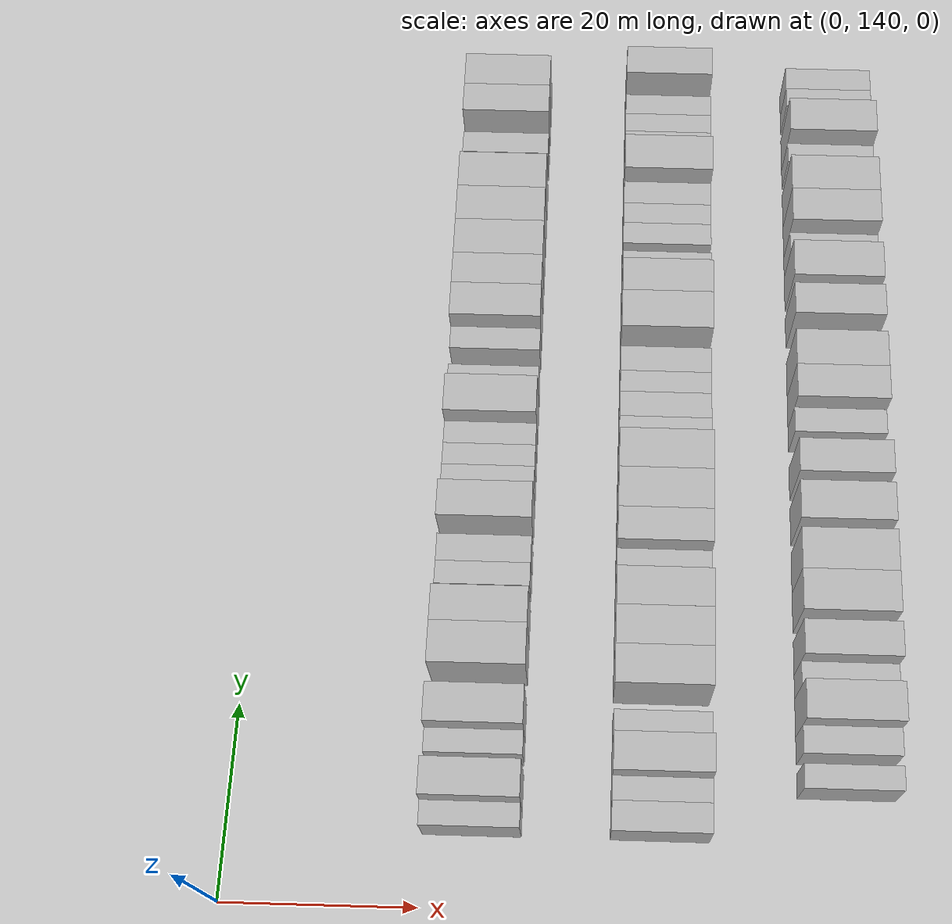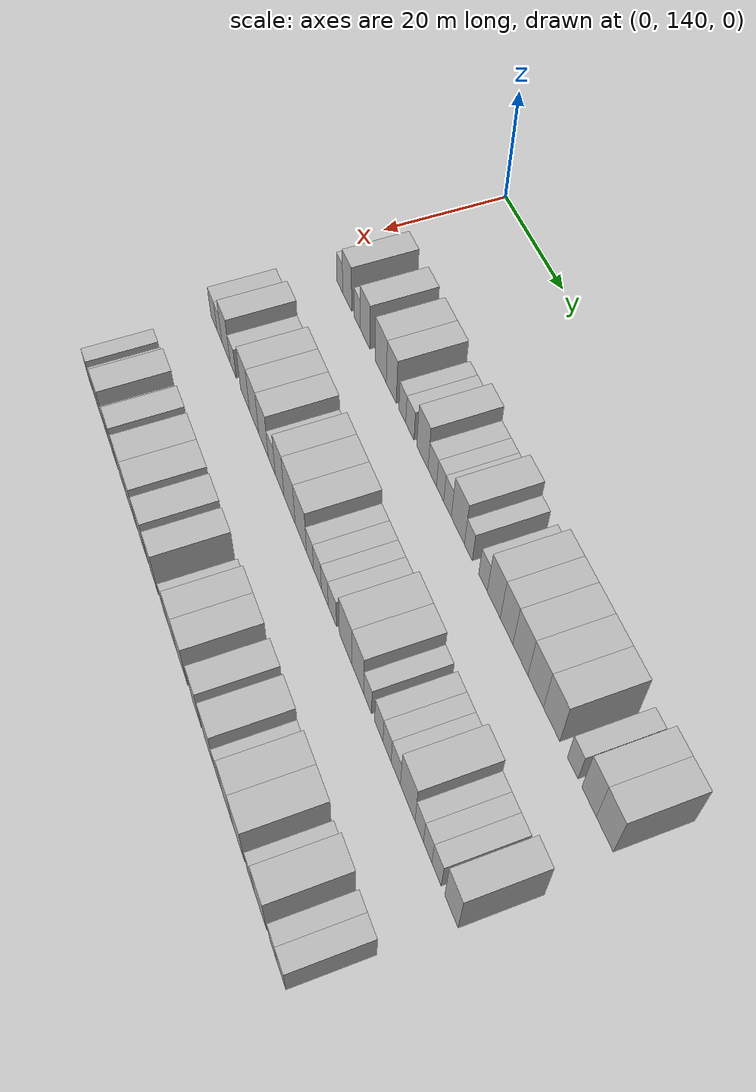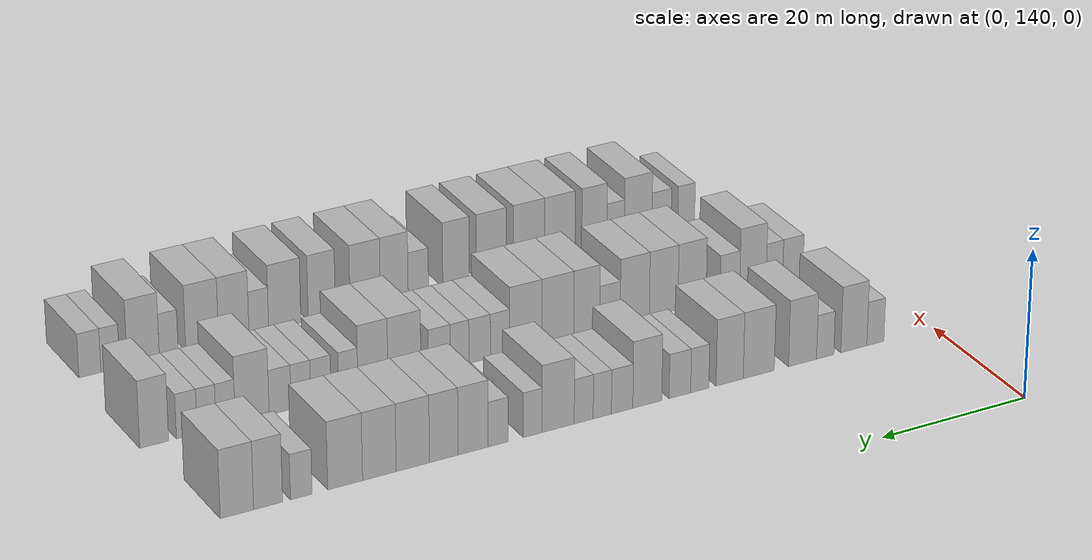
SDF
<sdf version="1.6">
 <world name="default">
  <model name="building_96">
   <static>1</static>
   <pose>25.0000 148.4211 0 0.000000 0.000000 0.000000</pose>
   <link name="link">
    <pose>0 0 3.00 0 0 0</pose>
    <collision name="collision"><geometry><box><size>10.0000 2.4533 6.0000</size></box></geometry></collision>
    <visual name="visual">
     <cast_shadows>0</cast_shadows>
     <geometry><box><size>10.0000 2.4533 6.0000</size></box></geometry>
     <material>
      <script>
       <uri>model://HANNAS_wall/materials/scripts</uri>
       <uri>model://HANNAS_wall/materials/textures</uri>
       <name>vrc/HANNAS_wall</name>
      </script>
     </material>
    </visual>
   </link>
  </model>
  <model name="building_97">
   <static>1</static>
   <pose>25.0000 151.5107 0 0.000000 0.000000 0.000000</pose>
   <link name="link">
    <pose>0 0 4.50 0 0 0</pose>
    <collision name="collision"><geometry><box><size>10.0000 3.7259 9.0000</size></box></geometry></collision>
    <visual name="visual">
     <cast_shadows>0</cast_shadows>
     <geometry><box><size>10.0000 3.7259 9.0000</size></box></geometry>
     <material>
      <script>
       <uri>model://HANNAS_wall/materials/scripts</uri>
       <uri>model://HANNAS_wall/materials/textures</uri>
       <name>vrc/HANNAS_wall</name>
      </script>
     </material>
    </visual>
   </link>
  </model>
  <model name="building_98">
   <static>1</static>
   <pose>25.0000 155.6015 0 0.000000 0.000000 0.000000</pose>
   <link name="link">
    <pose>0 0 3.00 0 0 0</pose>
    <collision name="collision"><geometry><box><size>10.0000 2.4557 6.0000</size></box></geometry></collision>
    <visual name="visual">
     <cast_shadows>0</cast_shadows>
     <geometry><box><size>10.0000 2.4557 6.0000</size></box></geometry>
     <material>
      <script>
       <uri>model://HANNAS_wall/materials/scripts</uri>
       <uri>model://HANNAS_wall/materials/textures</uri>
       <name>vrc/HANNAS_wall</name>
      </script>
     </material>
    </visual>
   </link>
  </model>
  <model name="building_99">
   <static>1</static>
   <pose>25.0000 158.8070 0 0.000000 0.000000 0.000000</pose>
   <link name="link">
    <pose>0 0 4.50 0 0 0</pose>
    <collision name="collision"><geometry><box><size>10.0000 3.9552 9.0000</size></box></geometry></collision>
    <visual name="visual">
     <cast_shadows>0</cast_shadows>
     <geometry><box><size>10.0000 3.9552 9.0000</size></box></geometry>
     <material>
      <script>
       <uri>model://HANNAS_wall/materials/scripts</uri>
       <uri>model://HANNAS_wall/materials/textures</uri>
       <name>vrc/HANNAS_wall</name>
      </script>
     </material>
    </visual>
   </link>
  </model>
  <model name="building_100">
   <static>1</static>
   <pose>25.0000 164.9607 0 0.000000 0.000000 0.000000</pose>
   <link name="link">
    <pose>0 0 4.50 0 0 0</pose>
    <collision name="collision"><geometry><box><size>10.0000 4.3523 9.0000</size></box></geometry></collision>
    <visual name="visual">
     <cast_shadows>0</cast_shadows>
     <geometry><box><size>10.0000 4.3523 9.0000</size></box></geometry>
     <material>
      <script>
       <uri>model://HANNAS_wall/materials/scripts</uri>
       <uri>model://HANNAS_wall/materials/textures</uri>
       <name>vrc/HANNAS_wall</name>
      </script>
     </material>
    </visual>
   </link>
  </model>
  <model name="building_101">
   <static>1</static>
   <pose>25.0000 169.0292 0 0.000000 0.000000 0.000000</pose>
   <link name="link">
    <pose>0 0 4.50 0 0 0</pose>
    <collision name="collision"><geometry><box><size>10.0000 3.7846 9.0000</size></box></geometry></collision>
    <visual name="visual">
     <cast_shadows>0</cast_shadows>
     <geometry><box><size>10.0000 3.7846 9.0000</size></box></geometry>
     <material>
      <script>
       <uri>model://HANNAS_wall/materials/scripts</uri>
       <uri>model://HANNAS_wall/materials/textures</uri>
       <name>vrc/HANNAS_wall</name>
      </script>
     </material>
    </visual>
   </link>
  </model>
  <model name="building_102">
   <static>1</static>
   <pose>25.0000 173.1802 0 0.000000 0.000000 0.000000</pose>
   <link name="link">
    <pose>0 0 3.00 0 0 0</pose>
    <collision name="collision"><geometry><box><size>10.0000 2.5174 6.0000</size></box></geometry></collision>
    <visual name="visual">
     <cast_shadows>0</cast_shadows>
     <geometry><box><size>10.0000 2.5174 6.0000</size></box></geometry>
     <material>
      <script>
       <uri>model://HANNAS_wall/materials/scripts</uri>
       <uri>model://HANNAS_wall/materials/textures</uri>
       <name>vrc/HANNAS_wall</name>
      </script>
     </material>
    </visual>
   </link>
  </model>
  <model name="building_103">
   <static>1</static>
   <pose>25.0000 175.9253 0 0.000000 0.000000 0.000000</pose>
   <link name="link">
    <pose>0 0 3.00 0 0 0</pose>
    <collision name="collision"><geometry><box><size>10.0000 2.9727 6.0000</size></box></geometry></collision>
    <visual name="visual">
     <cast_shadows>0</cast_shadows>
     <geometry><box><size>10.0000 2.9727 6.0000</size></box></geometry>
     <material>
      <script>
       <uri>model://HANNAS_wall/materials/scripts</uri>
       <uri>model://HANNAS_wall/materials/textures</uri>
       <name>vrc/HANNAS_wall</name>
      </script>
     </material>
    </visual>
   </link>
  </model>
  <model name="building_104">
   <static>1</static>
   <pose>25.0000 180.3932 0 0.000000 0.000000 0.000000</pose>
   <link name="link">
    <pose>0 0 4.50 0 0 0</pose>
    <collision name="collision"><geometry><box><size>10.0000 3.9633 9.0000</size></box></geometry></collision>
    <visual name="visual">
     <cast_shadows>0</cast_shadows>
     <geometry><box><size>10.0000 3.9633 9.0000</size></box></geometry>
     <material>
      <script>
       <uri>model://HANNAS_wall/materials/scripts</uri>
       <uri>model://HANNAS_wall/materials/textures</uri>
       <name>vrc/HANNAS_wall</name>
      </script>
     </material>
    </visual>
   </link>
  </model>
  <model name="building_105">
   <static>1</static>
   <pose>25.0000 183.8368 0 0.000000 0.000000 0.000000</pose>
   <link name="link">
    <pose>0 0 3.00 0 0 0</pose>
    <collision name="collision"><geometry><box><size>10.0000 2.9239 6.0000</size></box></geometry></collision>
    <visual name="visual">
     <cast_shadows>0</cast_shadows>
     <geometry><box><size>10.0000 2.9239 6.0000</size></box></geometry>
     <material>
      <script>
       <uri>model://HANNAS_wall/materials/scripts</uri>
       <uri>model://HANNAS_wall/materials/textures</uri>
       <name>vrc/HANNAS_wall</name>
      </script>
     </material>
    </visual>
   </link>
  </model>
  <model name="building_106">
   <static>1</static>
   <pose>25.0000 186.5346 0 0.000000 0.000000 0.000000</pose>
   <link name="link">
    <pose>0 0 3.00 0 0 0</pose>
    <collision name="collision"><geometry><box><size>10.0000 2.4715 6.0000</size></box></geometry></collision>
    <visual name="visual">
     <cast_shadows>0</cast_shadows>
     <geometry><box><size>10.0000 2.4715 6.0000</size></box></geometry>
     <material>
      <script>
       <uri>model://HANNAS_wall/materials/scripts</uri>
       <uri>model://HANNAS_wall/materials/textures</uri>
       <name>vrc/HANNAS_wall</name>
      </script>
     </material>
    </visual>
   </link>
  </model>
  <model name="building_107">
   <static>1</static>
   <pose>25.0000 189.0455 0 0.000000 0.000000 0.000000</pose>
   <link name="link">
    <pose>0 0 3.00 0 0 0</pose>
    <collision name="collision"><geometry><box><size>10.0000 2.5503 6.0000</size></box></geometry></collision>
    <visual name="visual">
     <cast_shadows>0</cast_shadows>
     <geometry><box><size>10.0000 2.5503 6.0000</size></box></geometry>
     <material>
      <script>
       <uri>model://HANNAS_wall/materials/scripts</uri>
       <uri>model://HANNAS_wall/materials/textures</uri>
       <name>vrc/HANNAS_wall</name>
      </script>
     </material>
    </visual>
   </link>
  </model>
  <model name="building_108">
   <static>1</static>
   <pose>25.0000 192.4668 0 0.000000 0.000000 0.000000</pose>
   <link name="link">
    <pose>0 0 4.50 0 0 0</pose>
    <collision name="collision"><geometry><box><size>10.0000 4.2922 9.0000</size></box></geometry></collision>
    <visual name="visual">
     <cast_shadows>0</cast_shadows>
     <geometry><box><size>10.0000 4.2922 9.0000</size></box></geometry>
     <material>
      <script>
       <uri>model://HANNAS_wall/materials/scripts</uri>
       <uri>model://HANNAS_wall/materials/textures</uri>
       <name>vrc/HANNAS_wall</name>
      </script>
     </material>
    </visual>
   </link>
  </model>
  <model name="building_109">
   <static>1</static>
   <pose>25.0000 195.8750 0 0.000000 0.000000 0.000000</pose>
   <link name="link">
    <pose>0 0 3.00 0 0 0</pose>
    <collision name="collision"><geometry><box><size>10.0000 2.5241 6.0000</size></box></geometry></collision>
    <visual name="visual">
     <cast_shadows>0</cast_shadows>
     <geometry><box><size>10.0000 2.5241 6.0000</size></box></geometry>
     <material>
      <script>
       <uri>model://HANNAS_wall/materials/scripts</uri>
       <uri>model://HANNAS_wall/materials/textures</uri>
       <name>vrc/HANNAS_wall</name>
      </script>
     </material>
    </visual>
   </link>
  </model>
  <model name="building_110">
   <static>1</static>
   <pose>25.0000 200.4696 0 0.000000 0.000000 0.000000</pose>
   <link name="link">
    <pose>0 0 3.00 0 0 0</pose>
    <collision name="collision"><geometry><box><size>10.0000 2.6652 6.0000</size></box></geometry></collision>
    <visual name="visual">
     <cast_shadows>0</cast_shadows>
     <geometry><box><size>10.0000 2.6652 6.0000</size></box></geometry>
     <material>
      <script>
       <uri>model://HANNAS_wall/materials/scripts</uri>
       <uri>model://HANNAS_wall/materials/textures</uri>
       <name>vrc/HANNAS_wall</name>
      </script>
     </material>
    </visual>
   </link>
  </model>
  <model name="building_111">
   <static>1</static>
   <pose>25.0000 203.7812 0 0.000000 0.000000 0.000000</pose>
   <link name="link">
    <pose>0 0 4.50 0 0 0</pose>
    <collision name="collision"><geometry><box><size>10.0000 3.9581 9.0000</size></box></geometry></collision>
    <visual name="visual">
     <cast_shadows>0</cast_shadows>
     <geometry><box><size>10.0000 3.9581 9.0000</size></box></geometry>
     <material>
      <script>
       <uri>model://HANNAS_wall/materials/scripts</uri>
       <uri>model://HANNAS_wall/materials/textures</uri>
       <name>vrc/HANNAS_wall</name>
      </script>
     </material>
    </visual>
   </link>
  </model>
  <model name="building_112">
   <static>1</static>
   <pose>25.0000 207.6361 0 0.000000 0.000000 0.000000</pose>
   <link name="link">
    <pose>0 0 4.50 0 0 0</pose>
    <collision name="collision"><geometry><box><size>10.0000 3.7517 9.0000</size></box></geometry></collision>
    <visual name="visual">
     <cast_shadows>0</cast_shadows>
     <geometry><box><size>10.0000 3.7517 9.0000</size></box></geometry>
     <material>
      <script>
       <uri>model://HANNAS_wall/materials/scripts</uri>
       <uri>model://HANNAS_wall/materials/textures</uri>
       <name>vrc/HANNAS_wall</name>
      </script>
     </material>
    </visual>
   </link>
  </model>
  <model name="building_113">
   <static>1</static>
   <pose>25.0000 211.6808 0 0.000000 0.000000 0.000000</pose>
   <link name="link">
    <pose>0 0 4.50 0 0 0</pose>
    <collision name="collision"><geometry><box><size>10.0000 4.3376 9.0000</size></box></geometry></collision>
    <visual name="visual">
     <cast_shadows>0</cast_shadows>
     <geometry><box><size>10.0000 4.3376 9.0000</size></box></geometry>
     <material>
      <script>
       <uri>model://HANNAS_wall/materials/scripts</uri>
       <uri>model://HANNAS_wall/materials/textures</uri>
       <name>vrc/HANNAS_wall</name>
      </script>
     </material>
    </visual>
   </link>
  </model>
  <model name="building_114">
   <static>1</static>
   <pose>25.0000 216.0240 0 0.000000 0.000000 0.000000</pose>
   <link name="link">
    <pose>0 0 4.50 0 0 0</pose>
    <collision name="collision"><geometry><box><size>10.0000 4.3489 9.0000</size></box></geometry></collision>
    <visual name="visual">
     <cast_shadows>0</cast_shadows>
     <geometry><box><size>10.0000 4.3489 9.0000</size></box></geometry>
     <material>
      <script>
       <uri>model://HANNAS_wall/materials/scripts</uri>
       <uri>model://HANNAS_wall/materials/textures</uri>
       <name>vrc/HANNAS_wall</name>
      </script>
     </material>
    </visual>
   </link>
  </model>
  <model name="building_115">
   <static>1</static>
   <pose>25.0000 220.4302 0 0.000000 0.000000 0.000000</pose>
   <link name="link">
    <pose>0 0 4.50 0 0 0</pose>
    <collision name="collision"><geometry><box><size>10.0000 4.4634 9.0000</size></box></geometry></collision>
    <visual name="visual">
     <cast_shadows>0</cast_shadows>
     <geometry><box><size>10.0000 4.4634 9.0000</size></box></geometry>
     <material>
      <script>
       <uri>model://HANNAS_wall/materials/scripts</uri>
       <uri>model://HANNAS_wall/materials/textures</uri>
       <name>vrc/HANNAS_wall</name>
      </script>
     </material>
    </visual>
   </link>
  </model>
  <model name="building_116">
   <static>1</static>
   <pose>25.0000 226.0363 0 0.000000 0.000000 0.000000</pose>
   <link name="link">
    <pose>0 0 3.00 0 0 0</pose>
    <collision name="collision"><geometry><box><size>10.0000 2.7488 6.0000</size></box></geometry></collision>
    <visual name="visual">
     <cast_shadows>0</cast_shadows>
     <geometry><box><size>10.0000 2.7488 6.0000</size></box></geometry>
     <material>
      <script>
       <uri>model://HANNAS_wall/materials/scripts</uri>
       <uri>model://HANNAS_wall/materials/textures</uri>
       <name>vrc/HANNAS_wall</name>
      </script>
     </material>
    </visual>
   </link>
  </model>
  <model name="building_117">
   <static>1</static>
   <pose>25.0000 230.2410 0 0.000000 0.000000 0.000000</pose>
   <link name="link">
    <pose>0 0 4.50 0 0 0</pose>
    <collision name="collision"><geometry><box><size>10.0000 3.6606 9.0000</size></box></geometry></collision>
    <visual name="visual">
     <cast_shadows>0</cast_shadows>
     <geometry><box><size>10.0000 3.6606 9.0000</size></box></geometry>
     <material>
      <script>
       <uri>model://HANNAS_wall/materials/scripts</uri>
       <uri>model://HANNAS_wall/materials/textures</uri>
       <name>vrc/HANNAS_wall</name>
      </script>
     </material>
    </visual>
   </link>
  </model>
  <model name="building_118">
   <static>1</static>
   <pose>25.0000 234.1671 0 0.000000 0.000000 0.000000</pose>
   <link name="link">
    <pose>0 0 4.50 0 0 0</pose>
    <collision name="collision"><geometry><box><size>10.0000 4.1916 9.0000</size></box></geometry></collision>
    <visual name="visual">
     <cast_shadows>0</cast_shadows>
     <geometry><box><size>10.0000 4.1916 9.0000</size></box></geometry>
     <material>
      <script>
       <uri>model://HANNAS_wall/materials/scripts</uri>
       <uri>model://HANNAS_wall/materials/textures</uri>
       <name>vrc/HANNAS_wall</name>
      </script>
     </material>
    </visual>
   </link>
  </model>
  <model name="building_206">
   <static>1</static>
   <pose>44.0000 148.6912 0 0.000000 0.000000 0.000000</pose>
   <link name="link">
    <pose>0 0 3.00 0 0 0</pose>
    <collision name="collision"><geometry><box><size>10.0000 2.9686 6.0000</size></box></geometry></collision>
    <visual name="visual">
     <cast_shadows>0</cast_shadows>
     <geometry><box><size>10.0000 2.9686 6.0000</size></box></geometry>
     <material>
      <script>
       <uri>model://HANNAS_wall/materials/scripts</uri>
       <uri>model://HANNAS_wall/materials/textures</uri>
       <name>vrc/HANNAS_wall</name>
      </script>
     </material>
    </visual>
   </link>
  </model>
  <model name="building_207">
   <static>1</static>
   <pose>44.0000 151.3843 0 0.000000 0.000000 0.000000</pose>
   <link name="link">
    <pose>0 0 3.00 0 0 0</pose>
    <collision name="collision"><geometry><box><size>10.0000 2.4177 6.0000</size></box></geometry></collision>
    <visual name="visual">
     <cast_shadows>0</cast_shadows>
     <geometry><box><size>10.0000 2.4177 6.0000</size></box></geometry>
     <material>
      <script>
       <uri>model://HANNAS_wall/materials/scripts</uri>
       <uri>model://HANNAS_wall/materials/textures</uri>
       <name>vrc/HANNAS_wall</name>
      </script>
     </material>
    </visual>
   </link>
  </model>
  <model name="building_208">
   <static>1</static>
   <pose>44.0000 154.5116 0 0.000000 0.000000 0.000000</pose>
   <link name="link">
    <pose>0 0 4.50 0 0 0</pose>
    <collision name="collision"><geometry><box><size>10.0000 3.8367 9.0000</size></box></geometry></collision>
    <visual name="visual">
     <cast_shadows>0</cast_shadows>
     <geometry><box><size>10.0000 3.8367 9.0000</size></box></geometry>
     <material>
      <script>
       <uri>model://HANNAS_wall/materials/scripts</uri>
       <uri>model://HANNAS_wall/materials/textures</uri>
       <name>vrc/HANNAS_wall</name>
      </script>
     </material>
    </visual>
   </link>
  </model>
  <model name="building_209">
   <static>1</static>
   <pose>44.0000 157.8383 0 0.000000 0.000000 0.000000</pose>
   <link name="link">
    <pose>0 0 3.00 0 0 0</pose>
    <collision name="collision"><geometry><box><size>10.0000 2.8168 6.0000</size></box></geometry></collision>
    <visual name="visual">
     <cast_shadows>0</cast_shadows>
     <geometry><box><size>10.0000 2.8168 6.0000</size></box></geometry>
     <material>
      <script>
       <uri>model://HANNAS_wall/materials/scripts</uri>
       <uri>model://HANNAS_wall/materials/textures</uri>
       <name>vrc/HANNAS_wall</name>
      </script>
     </material>
    </visual>
   </link>
  </model>
  <model name="building_210">
   <static>1</static>
   <pose>44.0000 163.2570 0 0.000000 0.000000 0.000000</pose>
   <link name="link">
    <pose>0 0 4.50 0 0 0</pose>
    <collision name="collision"><geometry><box><size>10.0000 4.0206 9.0000</size></box></geometry></collision>
    <visual name="visual">
     <cast_shadows>0</cast_shadows>
     <geometry><box><size>10.0000 4.0206 9.0000</size></box></geometry>
     <material>
      <script>
       <uri>model://HANNAS_wall/materials/scripts</uri>
       <uri>model://HANNAS_wall/materials/textures</uri>
       <name>vrc/HANNAS_wall</name>
      </script>
     </material>
    </visual>
   </link>
  </model>
  <model name="building_211">
   <static>1</static>
   <pose>44.0000 167.3097 0 0.000000 0.000000 0.000000</pose>
   <link name="link">
    <pose>0 0 4.50 0 0 0</pose>
    <collision name="collision"><geometry><box><size>10.0000 4.0847 9.0000</size></box></geometry></collision>
    <visual name="visual">
     <cast_shadows>0</cast_shadows>
     <geometry><box><size>10.0000 4.0847 9.0000</size></box></geometry>
     <material>
      <script>
       <uri>model://HANNAS_wall/materials/scripts</uri>
       <uri>model://HANNAS_wall/materials/textures</uri>
       <name>vrc/HANNAS_wall</name>
      </script>
     </material>
    </visual>
   </link>
  </model>
  <model name="building_212">
   <static>1</static>
   <pose>44.0000 171.4103 0 0.000000 0.000000 0.000000</pose>
   <link name="link">
    <pose>0 0 4.50 0 0 0</pose>
    <collision name="collision"><geometry><box><size>10.0000 4.1164 9.0000</size></box></geometry></collision>
    <visual name="visual">
     <cast_shadows>0</cast_shadows>
     <geometry><box><size>10.0000 4.1164 9.0000</size></box></geometry>
     <material>
      <script>
       <uri>model://HANNAS_wall/materials/scripts</uri>
       <uri>model://HANNAS_wall/materials/textures</uri>
       <name>vrc/HANNAS_wall</name>
      </script>
     </material>
    </visual>
   </link>
  </model>
  <model name="building_213">
   <static>1</static>
   <pose>44.0000 174.9032 0 0.000000 0.000000 0.000000</pose>
   <link name="link">
    <pose>0 0 3.00 0 0 0</pose>
    <collision name="collision"><geometry><box><size>10.0000 2.8694 6.0000</size></box></geometry></collision>
    <visual name="visual">
     <cast_shadows>0</cast_shadows>
     <geometry><box><size>10.0000 2.8694 6.0000</size></box></geometry>
     <material>
      <script>
       <uri>model://HANNAS_wall/materials/scripts</uri>
       <uri>model://HANNAS_wall/materials/textures</uri>
       <name>vrc/HANNAS_wall</name>
      </script>
     </material>
    </visual>
   </link>
  </model>
  <model name="building_214">
   <static>1</static>
   <pose>44.0000 178.1394 0 0.000000 0.000000 0.000000</pose>
   <link name="link">
    <pose>0 0 4.50 0 0 0</pose>
    <collision name="collision"><geometry><box><size>10.0000 3.6030 9.0000</size></box></geometry></collision>
    <visual name="visual">
     <cast_shadows>0</cast_shadows>
     <geometry><box><size>10.0000 3.6030 9.0000</size></box></geometry>
     <material>
      <script>
       <uri>model://HANNAS_wall/materials/scripts</uri>
       <uri>model://HANNAS_wall/materials/textures</uri>
       <name>vrc/HANNAS_wall</name>
      </script>
     </material>
    </visual>
   </link>
  </model>
  <model name="building_215">
   <static>1</static>
   <pose>44.0000 182.1709 0 0.000000 0.000000 0.000000</pose>
   <link name="link">
    <pose>0 0 4.50 0 0 0</pose>
    <collision name="collision"><geometry><box><size>10.0000 4.4600 9.0000</size></box></geometry></collision>
    <visual name="visual">
     <cast_shadows>0</cast_shadows>
     <geometry><box><size>10.0000 4.4600 9.0000</size></box></geometry>
     <material>
      <script>
       <uri>model://HANNAS_wall/materials/scripts</uri>
       <uri>model://HANNAS_wall/materials/textures</uri>
       <name>vrc/HANNAS_wall</name>
      </script>
     </material>
    </visual>
   </link>
  </model>
  <model name="building_216">
   <static>1</static>
   <pose>44.0000 186.6219 0 0.000000 0.000000 0.000000</pose>
   <link name="link">
    <pose>0 0 4.50 0 0 0</pose>
    <collision name="collision"><geometry><box><size>10.0000 4.4419 9.0000</size></box></geometry></collision>
    <visual name="visual">
     <cast_shadows>0</cast_shadows>
     <geometry><box><size>10.0000 4.4419 9.0000</size></box></geometry>
     <material>
      <script>
       <uri>model://HANNAS_wall/materials/scripts</uri>
       <uri>model://HANNAS_wall/materials/textures</uri>
       <name>vrc/HANNAS_wall</name>
      </script>
     </material>
    </visual>
   </link>
  </model>
  <model name="building_217">
   <static>1</static>
   <pose>44.0000 190.1729 0 0.000000 0.000000 0.000000</pose>
   <link name="link">
    <pose>0 0 3.00 0 0 0</pose>
    <collision name="collision"><geometry><box><size>10.0000 2.6603 6.0000</size></box></geometry></collision>
    <visual name="visual">
     <cast_shadows>0</cast_shadows>
     <geometry><box><size>10.0000 2.6603 6.0000</size></box></geometry>
     <material>
      <script>
       <uri>model://HANNAS_wall/materials/scripts</uri>
       <uri>model://HANNAS_wall/materials/textures</uri>
       <name>vrc/HANNAS_wall</name>
      </script>
     </material>
    </visual>
   </link>
  </model>
  <model name="building_218">
   <static>1</static>
   <pose>44.0000 192.9671 0 0.000000 0.000000 0.000000</pose>
   <link name="link">
    <pose>0 0 3.00 0 0 0</pose>
    <collision name="collision"><geometry><box><size>10.0000 2.9280 6.0000</size></box></geometry></collision>
    <visual name="visual">
     <cast_shadows>0</cast_shadows>
     <geometry><box><size>10.0000 2.9280 6.0000</size></box></geometry>
     <material>
      <script>
       <uri>model://HANNAS_wall/materials/scripts</uri>
       <uri>model://HANNAS_wall/materials/textures</uri>
       <name>vrc/HANNAS_wall</name>
      </script>
     </material>
    </visual>
   </link>
  </model>
  <model name="building_219">
   <static>1</static>
   <pose>44.0000 195.6917 0 0.000000 0.000000 0.000000</pose>
   <link name="link">
    <pose>0 0 3.00 0 0 0</pose>
    <collision name="collision"><geometry><box><size>10.0000 2.5213 6.0000</size></box></geometry></collision>
    <visual name="visual">
     <cast_shadows>0</cast_shadows>
     <geometry><box><size>10.0000 2.5213 6.0000</size></box></geometry>
     <material>
      <script>
       <uri>model://HANNAS_wall/materials/scripts</uri>
       <uri>model://HANNAS_wall/materials/textures</uri>
       <name>vrc/HANNAS_wall</name>
      </script>
     </material>
    </visual>
   </link>
  </model>
  <model name="building_220">
   <static>1</static>
   <pose>44.0000 198.4492 0 0.000000 0.000000 0.000000</pose>
   <link name="link">
    <pose>0 0 3.00 0 0 0</pose>
    <collision name="collision"><geometry><box><size>10.0000 2.9937 6.0000</size></box></geometry></collision>
    <visual name="visual">
     <cast_shadows>0</cast_shadows>
     <geometry><box><size>10.0000 2.9937 6.0000</size></box></geometry>
     <material>
      <script>
       <uri>model://HANNAS_wall/materials/scripts</uri>
       <uri>model://HANNAS_wall/materials/textures</uri>
       <name>vrc/HANNAS_wall</name>
      </script>
     </material>
    </visual>
   </link>
  </model>
  <model name="building_221">
   <static>1</static>
   <pose>44.0000 203.1665 0 0.000000 0.000000 0.000000</pose>
   <link name="link">
    <pose>0 0 4.50 0 0 0</pose>
    <collision name="collision"><geometry><box><size>10.0000 4.4409 9.0000</size></box></geometry></collision>
    <visual name="visual">
     <cast_shadows>0</cast_shadows>
     <geometry><box><size>10.0000 4.4409 9.0000</size></box></geometry>
     <material>
      <script>
       <uri>model://HANNAS_wall/materials/scripts</uri>
       <uri>model://HANNAS_wall/materials/textures</uri>
       <name>vrc/HANNAS_wall</name>
      </script>
     </material>
    </visual>
   </link>
  </model>
  <model name="building_222">
   <static>1</static>
   <pose>44.0000 207.3966 0 0.000000 0.000000 0.000000</pose>
   <link name="link">
    <pose>0 0 4.50 0 0 0</pose>
    <collision name="collision"><geometry><box><size>10.0000 4.0192 9.0000</size></box></geometry></collision>
    <visual name="visual">
     <cast_shadows>0</cast_shadows>
     <geometry><box><size>10.0000 4.0192 9.0000</size></box></geometry>
     <material>
      <script>
       <uri>model://HANNAS_wall/materials/scripts</uri>
       <uri>model://HANNAS_wall/materials/textures</uri>
       <name>vrc/HANNAS_wall</name>
      </script>
     </material>
    </visual>
   </link>
  </model>
  <model name="building_223">
   <static>1</static>
   <pose>44.0000 210.6888 0 0.000000 0.000000 0.000000</pose>
   <link name="link">
    <pose>0 0 3.00 0 0 0</pose>
    <collision name="collision"><geometry><box><size>10.0000 2.5652 6.0000</size></box></geometry></collision>
    <visual name="visual">
     <cast_shadows>0</cast_shadows>
     <geometry><box><size>10.0000 2.5652 6.0000</size></box></geometry>
     <material>
      <script>
       <uri>model://HANNAS_wall/materials/scripts</uri>
       <uri>model://HANNAS_wall/materials/textures</uri>
       <name>vrc/HANNAS_wall</name>
      </script>
     </material>
    </visual>
   </link>
  </model>
  <model name="building_224">
   <static>1</static>
   <pose>44.0000 214.3191 0 0.000000 0.000000 0.000000</pose>
   <link name="link">
    <pose>0 0 3.00 0 0 0</pose>
    <collision name="collision"><geometry><box><size>10.0000 2.6952 6.0000</size></box></geometry></collision>
    <visual name="visual">
     <cast_shadows>0</cast_shadows>
     <geometry><box><size>10.0000 2.6952 6.0000</size></box></geometry>
     <material>
      <script>
       <uri>model://HANNAS_wall/materials/scripts</uri>
       <uri>model://HANNAS_wall/materials/textures</uri>
       <name>vrc/HANNAS_wall</name>
      </script>
     </material>
    </visual>
   </link>
  </model>
  <model name="building_225">
   <static>1</static>
   <pose>44.0000 216.9649 0 0.000000 0.000000 0.000000</pose>
   <link name="link">
    <pose>0 0 3.00 0 0 0</pose>
    <collision name="collision"><geometry><box><size>10.0000 2.5965 6.0000</size></box></geometry></collision>
    <visual name="visual">
     <cast_shadows>0</cast_shadows>
     <geometry><box><size>10.0000 2.5965 6.0000</size></box></geometry>
     <material>
      <script>
       <uri>model://HANNAS_wall/materials/scripts</uri>
       <uri>model://HANNAS_wall/materials/textures</uri>
       <name>vrc/HANNAS_wall</name>
      </script>
     </material>
    </visual>
   </link>
  </model>
  <model name="building_226">
   <static>1</static>
   <pose>44.0000 219.7034 0 0.000000 0.000000 0.000000</pose>
   <link name="link">
    <pose>0 0 3.00 0 0 0</pose>
    <collision name="collision"><geometry><box><size>10.0000 2.8804 6.0000</size></box></geometry></collision>
    <visual name="visual">
     <cast_shadows>0</cast_shadows>
     <geometry><box><size>10.0000 2.8804 6.0000</size></box></geometry>
     <material>
      <script>
       <uri>model://HANNAS_wall/materials/scripts</uri>
       <uri>model://HANNAS_wall/materials/textures</uri>
       <name>vrc/HANNAS_wall</name>
      </script>
     </material>
    </visual>
   </link>
  </model>
  <model name="building_227">
   <static>1</static>
   <pose>44.0000 223.3593 0 0.000000 0.000000 0.000000</pose>
   <link name="link">
    <pose>0 0 4.50 0 0 0</pose>
    <collision name="collision"><geometry><box><size>10.0000 4.4314 9.0000</size></box></geometry></collision>
    <visual name="visual">
     <cast_shadows>0</cast_shadows>
     <geometry><box><size>10.0000 4.4314 9.0000</size></box></geometry>
     <material>
      <script>
       <uri>model://HANNAS_wall/materials/scripts</uri>
       <uri>model://HANNAS_wall/materials/textures</uri>
       <name>vrc/HANNAS_wall</name>
      </script>
     </material>
    </visual>
   </link>
  </model>
  <model name="building_228">
   <static>1</static>
   <pose>44.0000 226.8165 0 0.000000 0.000000 0.000000</pose>
   <link name="link">
    <pose>0 0 3.00 0 0 0</pose>
    <collision name="collision"><geometry><box><size>10.0000 2.4830 6.0000</size></box></geometry></collision>
    <visual name="visual">
     <cast_shadows>0</cast_shadows>
     <geometry><box><size>10.0000 2.4830 6.0000</size></box></geometry>
     <material>
      <script>
       <uri>model://HANNAS_wall/materials/scripts</uri>
       <uri>model://HANNAS_wall/materials/textures</uri>
       <name>vrc/HANNAS_wall</name>
      </script>
     </material>
    </visual>
   </link>
  </model>
  <model name="building_229">
   <static>1</static>
   <pose>44.0000 229.2777 0 0.000000 0.000000 0.000000</pose>
   <link name="link">
    <pose>0 0 3.00 0 0 0</pose>
    <collision name="collision"><geometry><box><size>10.0000 2.4394 6.0000</size></box></geometry></collision>
    <visual name="visual">
     <cast_shadows>0</cast_shadows>
     <geometry><box><size>10.0000 2.4394 6.0000</size></box></geometry>
     <material>
      <script>
       <uri>model://HANNAS_wall/materials/scripts</uri>
       <uri>model://HANNAS_wall/materials/textures</uri>
       <name>vrc/HANNAS_wall</name>
      </script>
     </material>
    </visual>
   </link>
  </model>
  <model name="building_230">
   <static>1</static>
   <pose>44.0000 231.8315 0 0.000000 0.000000 0.000000</pose>
   <link name="link">
    <pose>0 0 3.00 0 0 0</pose>
    <collision name="collision"><geometry><box><size>10.0000 2.6681 6.0000</size></box></geometry></collision>
    <visual name="visual">
     <cast_shadows>0</cast_shadows>
     <geometry><box><size>10.0000 2.6681 6.0000</size></box></geometry>
     <material>
      <script>
       <uri>model://HANNAS_wall/materials/scripts</uri>
       <uri>model://HANNAS_wall/materials/textures</uri>
       <name>vrc/HANNAS_wall</name>
      </script>
     </material>
    </visual>
   </link>
  </model>
  <model name="building_231">
   <static>1</static>
   <pose>44.0000 236.0149 0 0.000000 0.000000 0.000000</pose>
   <link name="link">
    <pose>0 0 4.50 0 0 0</pose>
    <collision name="collision"><geometry><box><size>10.0000 3.6987 9.0000</size></box></geometry></collision>
    <visual name="visual">
     <cast_shadows>0</cast_shadows>
     <geometry><box><size>10.0000 3.6987 9.0000</size></box></geometry>
     <material>
      <script>
       <uri>model://HANNAS_wall/materials/scripts</uri>
       <uri>model://HANNAS_wall/materials/textures</uri>
       <name>vrc/HANNAS_wall</name>
      </script>
     </material>
    </visual>
   </link>
  </model>
  <model name="building_329">
   <static>1</static>
   <pose>63.0000 153.1273 0 0.000000 0.000000 0.000000</pose>
   <link name="link">
    <pose>0 0 3.00 0 0 0</pose>
    <collision name="collision"><geometry><box><size>10.0000 2.4667 6.0000</size></box></geometry></collision>
    <visual name="visual">
     <cast_shadows>0</cast_shadows>
     <geometry><box><size>10.0000 2.4667 6.0000</size></box></geometry>
     <material>
      <script>
       <uri>model://HANNAS_wall/materials/scripts</uri>
       <uri>model://HANNAS_wall/materials/textures</uri>
       <name>vrc/HANNAS_wall</name>
      </script>
     </material>
    </visual>
   </link>
  </model>
  <model name="building_330">
   <static>1</static>
   <pose>63.0000 156.7795 0 0.000000 0.000000 0.000000</pose>
   <link name="link">
    <pose>0 0 3.00 0 0 0</pose>
    <collision name="collision"><geometry><box><size>10.0000 2.8377 6.0000</size></box></geometry></collision>
    <visual name="visual">
     <cast_shadows>0</cast_shadows>
     <geometry><box><size>10.0000 2.8377 6.0000</size></box></geometry>
     <material>
      <script>
       <uri>model://HANNAS_wall/materials/scripts</uri>
       <uri>model://HANNAS_wall/materials/textures</uri>
       <name>vrc/HANNAS_wall</name>
      </script>
     </material>
    </visual>
   </link>
  </model>
  <model name="building_331">
   <static>1</static>
   <pose>63.0000 160.2066 0 0.000000 0.000000 0.000000</pose>
   <link name="link">
    <pose>0 0 4.50 0 0 0</pose>
    <collision name="collision"><geometry><box><size>10.0000 4.0166 9.0000</size></box></geometry></collision>
    <visual name="visual">
     <cast_shadows>0</cast_shadows>
     <geometry><box><size>10.0000 4.0166 9.0000</size></box></geometry>
     <material>
      <script>
       <uri>model://HANNAS_wall/materials/scripts</uri>
       <uri>model://HANNAS_wall/materials/textures</uri>
       <name>vrc/HANNAS_wall</name>
      </script>
     </material>
    </visual>
   </link>
  </model>
  <model name="building_332">
   <static>1</static>
   <pose>63.0000 163.4821 0 0.000000 0.000000 0.000000</pose>
   <link name="link">
    <pose>0 0 3.00 0 0 0</pose>
    <collision name="collision"><geometry><box><size>10.0000 2.5345 6.0000</size></box></geometry></collision>
    <visual name="visual">
     <cast_shadows>0</cast_shadows>
     <geometry><box><size>10.0000 2.5345 6.0000</size></box></geometry>
     <material>
      <script>
       <uri>model://HANNAS_wall/materials/scripts</uri>
       <uri>model://HANNAS_wall/materials/textures</uri>
       <name>vrc/HANNAS_wall</name>
      </script>
     </material>
    </visual>
   </link>
  </model>
  <model name="building_333">
   <static>1</static>
   <pose>63.0000 166.5652 0 0.000000 0.000000 0.000000</pose>
   <link name="link">
    <pose>0 0 4.50 0 0 0</pose>
    <collision name="collision"><geometry><box><size>10.0000 3.6317 9.0000</size></box></geometry></collision>
    <visual name="visual">
     <cast_shadows>0</cast_shadows>
     <geometry><box><size>10.0000 3.6317 9.0000</size></box></geometry>
     <material>
      <script>
       <uri>model://HANNAS_wall/materials/scripts</uri>
       <uri>model://HANNAS_wall/materials/textures</uri>
       <name>vrc/HANNAS_wall</name>
      </script>
     </material>
    </visual>
   </link>
  </model>
  <model name="building_334">
   <static>1</static>
   <pose>63.0000 171.5638 0 0.000000 0.000000 0.000000</pose>
   <link name="link">
    <pose>0 0 4.50 0 0 0</pose>
    <collision name="collision"><geometry><box><size>10.0000 4.3655 9.0000</size></box></geometry></collision>
    <visual name="visual">
     <cast_shadows>0</cast_shadows>
     <geometry><box><size>10.0000 4.3655 9.0000</size></box></geometry>
     <material>
      <script>
       <uri>model://HANNAS_wall/materials/scripts</uri>
       <uri>model://HANNAS_wall/materials/textures</uri>
       <name>vrc/HANNAS_wall</name>
      </script>
     </material>
    </visual>
   </link>
  </model>
  <model name="building_335">
   <static>1</static>
   <pose>63.0000 175.9861 0 0.000000 0.000000 0.000000</pose>
   <link name="link">
    <pose>0 0 4.50 0 0 0</pose>
    <collision name="collision"><geometry><box><size>10.0000 4.4790 9.0000</size></box></geometry></collision>
    <visual name="visual">
     <cast_shadows>0</cast_shadows>
     <geometry><box><size>10.0000 4.4790 9.0000</size></box></geometry>
     <material>
      <script>
       <uri>model://HANNAS_wall/materials/scripts</uri>
       <uri>model://HANNAS_wall/materials/textures</uri>
       <name>vrc/HANNAS_wall</name>
      </script>
     </material>
    </visual>
   </link>
  </model>
  <model name="building_336">
   <static>1</static>
   <pose>63.0000 181.3487 0 0.000000 0.000000 0.000000</pose>
   <link name="link">
    <pose>0 0 4.50 0 0 0</pose>
    <collision name="collision"><geometry><box><size>10.0000 4.2462 9.0000</size></box></geometry></collision>
    <visual name="visual">
     <cast_shadows>0</cast_shadows>
     <geometry><box><size>10.0000 4.2462 9.0000</size></box></geometry>
     <material>
      <script>
       <uri>model://HANNAS_wall/materials/scripts</uri>
       <uri>model://HANNAS_wall/materials/textures</uri>
       <name>vrc/HANNAS_wall</name>
      </script>
     </material>
    </visual>
   </link>
  </model>
  <model name="building_337">
   <static>1</static>
   <pose>63.0000 186.3445 0 0.000000 0.000000 0.000000</pose>
   <link name="link">
    <pose>0 0 4.50 0 0 0</pose>
    <collision name="collision"><geometry><box><size>10.0000 3.7455 9.0000</size></box></geometry></collision>
    <visual name="visual">
     <cast_shadows>0</cast_shadows>
     <geometry><box><size>10.0000 3.7455 9.0000</size></box></geometry>
     <material>
      <script>
       <uri>model://HANNAS_wall/materials/scripts</uri>
       <uri>model://HANNAS_wall/materials/textures</uri>
       <name>vrc/HANNAS_wall</name>
      </script>
     </material>
    </visual>
   </link>
  </model>
  <model name="building_338">
   <static>1</static>
   <pose>63.0000 191.6392 0 0.000000 0.000000 0.000000</pose>
   <link name="link">
    <pose>0 0 3.00 0 0 0</pose>
    <collision name="collision"><geometry><box><size>10.0000 2.8437 6.0000</size></box></geometry></collision>
    <visual name="visual">
     <cast_shadows>0</cast_shadows>
     <geometry><box><size>10.0000 2.8437 6.0000</size></box></geometry>
     <material>
      <script>
       <uri>model://HANNAS_wall/materials/scripts</uri>
       <uri>model://HANNAS_wall/materials/textures</uri>
       <name>vrc/HANNAS_wall</name>
      </script>
     </material>
    </visual>
   </link>
  </model>
  <model name="building_339">
   <static>1</static>
   <pose>63.0000 194.9842 0 0.000000 0.000000 0.000000</pose>
   <link name="link">
    <pose>0 0 4.50 0 0 0</pose>
    <collision name="collision"><geometry><box><size>10.0000 3.8463 9.0000</size></box></geometry></collision>
    <visual name="visual">
     <cast_shadows>0</cast_shadows>
     <geometry><box><size>10.0000 3.8463 9.0000</size></box></geometry>
     <material>
      <script>
       <uri>model://HANNAS_wall/materials/scripts</uri>
       <uri>model://HANNAS_wall/materials/textures</uri>
       <name>vrc/HANNAS_wall</name>
      </script>
     </material>
    </visual>
   </link>
  </model>
  <model name="building_340">
   <static>1</static>
   <pose>63.0000 199.0098 0 0.000000 0.000000 0.000000</pose>
   <link name="link">
    <pose>0 0 4.50 0 0 0</pose>
    <collision name="collision"><geometry><box><size>10.0000 4.2050 9.0000</size></box></geometry></collision>
    <visual name="visual">
     <cast_shadows>0</cast_shadows>
     <geometry><box><size>10.0000 4.2050 9.0000</size></box></geometry>
     <material>
      <script>
       <uri>model://HANNAS_wall/materials/scripts</uri>
       <uri>model://HANNAS_wall/materials/textures</uri>
       <name>vrc/HANNAS_wall</name>
      </script>
     </material>
    </visual>
   </link>
  </model>
  <model name="building_341">
   <static>1</static>
   <pose>63.0000 204.9808 0 0.000000 0.000000 0.000000</pose>
   <link name="link">
    <pose>0 0 4.50 0 0 0</pose>
    <collision name="collision"><geometry><box><size>10.0000 3.7371 9.0000</size></box></geometry></collision>
    <visual name="visual">
     <cast_shadows>0</cast_shadows>
     <geometry><box><size>10.0000 3.7371 9.0000</size></box></geometry>
     <material>
      <script>
       <uri>model://HANNAS_wall/materials/scripts</uri>
       <uri>model://HANNAS_wall/materials/textures</uri>
       <name>vrc/HANNAS_wall</name>
      </script>
     </material>
    </visual>
   </link>
  </model>
  <model name="building_342">
   <static>1</static>
   <pose>63.0000 210.0425 0 0.000000 0.000000 0.000000</pose>
   <link name="link">
    <pose>0 0 4.50 0 0 0</pose>
    <collision name="collision"><geometry><box><size>10.0000 4.3863 9.0000</size></box></geometry></collision>
    <visual name="visual">
     <cast_shadows>0</cast_shadows>
     <geometry><box><size>10.0000 4.3863 9.0000</size></box></geometry>
     <material>
      <script>
       <uri>model://HANNAS_wall/materials/scripts</uri>
       <uri>model://HANNAS_wall/materials/textures</uri>
       <name>vrc/HANNAS_wall</name>
      </script>
     </material>
    </visual>
   </link>
  </model>
  <model name="building_343">
   <static>1</static>
   <pose>63.0000 213.5656 0 0.000000 0.000000 0.000000</pose>
   <link name="link">
    <pose>0 0 3.00 0 0 0</pose>
    <collision name="collision"><geometry><box><size>10.0000 2.6598 6.0000</size></box></geometry></collision>
    <visual name="visual">
     <cast_shadows>0</cast_shadows>
     <geometry><box><size>10.0000 2.6598 6.0000</size></box></geometry>
     <material>
      <script>
       <uri>model://HANNAS_wall/materials/scripts</uri>
       <uri>model://HANNAS_wall/materials/textures</uri>
       <name>vrc/HANNAS_wall</name>
      </script>
     </material>
    </visual>
   </link>
  </model>
  <model name="building_344">
   <static>1</static>
   <pose>63.0000 216.9361 0 0.000000 0.000000 0.000000</pose>
   <link name="link">
    <pose>0 0 4.50 0 0 0</pose>
    <collision name="collision"><geometry><box><size>10.0000 4.0812 9.0000</size></box></geometry></collision>
    <visual name="visual">
     <cast_shadows>0</cast_shadows>
     <geometry><box><size>10.0000 4.0812 9.0000</size></box></geometry>
     <material>
      <script>
       <uri>model://HANNAS_wall/materials/scripts</uri>
       <uri>model://HANNAS_wall/materials/textures</uri>
       <name>vrc/HANNAS_wall</name>
      </script>
     </material>
    </visual>
   </link>
  </model>
  <model name="building_345">
   <static>1</static>
   <pose>63.0000 221.1770 0 0.000000 0.000000 0.000000</pose>
   <link name="link">
    <pose>0 0 4.50 0 0 0</pose>
    <collision name="collision"><geometry><box><size>10.0000 4.4006 9.0000</size></box></geometry></collision>
    <visual name="visual">
     <cast_shadows>0</cast_shadows>
     <geometry><box><size>10.0000 4.4006 9.0000</size></box></geometry>
     <material>
      <script>
       <uri>model://HANNAS_wall/materials/scripts</uri>
       <uri>model://HANNAS_wall/materials/textures</uri>
       <name>vrc/HANNAS_wall</name>
      </script>
     </material>
    </visual>
   </link>
  </model>
  <model name="building_346">
   <static>1</static>
   <pose>63.0000 225.6238 0 0.000000 0.000000 0.000000</pose>
   <link name="link">
    <pose>0 0 3.00 0 0 0</pose>
    <collision name="collision"><geometry><box><size>10.0000 2.4930 6.0000</size></box></geometry></collision>
    <visual name="visual">
     <cast_shadows>0</cast_shadows>
     <geometry><box><size>10.0000 2.4930 6.0000</size></box></geometry>
     <material>
      <script>
       <uri>model://HANNAS_wall/materials/scripts</uri>
       <uri>model://HANNAS_wall/materials/textures</uri>
       <name>vrc/HANNAS_wall</name>
      </script>
     </material>
    </visual>
   </link>
  </model>
  <model name="building_347">
   <static>1</static>
   <pose>63.0000 228.9955 0 0.000000 0.000000 0.000000</pose>
   <link name="link">
    <pose>0 0 4.50 0 0 0</pose>
    <collision name="collision"><geometry><box><size>10.0000 4.2502 9.0000</size></box></geometry></collision>
    <visual name="visual">
     <cast_shadows>0</cast_shadows>
     <geometry><box><size>10.0000 4.2502 9.0000</size></box></geometry>
     <material>
      <script>
       <uri>model://HANNAS_wall/materials/scripts</uri>
       <uri>model://HANNAS_wall/materials/textures</uri>
       <name>vrc/HANNAS_wall</name>
      </script>
     </material>
    </visual>
   </link>
  </model>
  <model name="building_348">
   <static>1</static>
   <pose>63.0000 233.3493 0 0.000000 0.000000 0.000000</pose>
   <link name="link">
    <pose>0 0 3.00 0 0 0</pose>
    <collision name="collision"><geometry><box><size>10.0000 2.4575 6.0000</size></box></geometry></collision>
    <visual name="visual">
     <cast_shadows>0</cast_shadows>
     <geometry><box><size>10.0000 2.4575 6.0000</size></box></geometry>
     <material>
      <script>
       <uri>model://HANNAS_wall/materials/scripts</uri>
       <uri>model://HANNAS_wall/materials/textures</uri>
       <name>vrc/HANNAS_wall</name>
      </script>
     </material>
    </visual>
   </link>
  </model>
  <model name="building_349">
   <static>1</static>
   <pose>63.0000 236.0132 0 0.000000 0.000000 0.000000</pose>
   <link name="link">
    <pose>0 0 3.00 0 0 0</pose>
    <collision name="collision"><geometry><box><size>10.0000 2.8702 6.0000</size></box></geometry></collision>
    <visual name="visual">
     <cast_shadows>0</cast_shadows>
     <geometry><box><size>10.0000 2.8702 6.0000</size></box></geometry>
     <material>
      <script>
       <uri>model://HANNAS_wall/materials/scripts</uri>
       <uri>model://HANNAS_wall/materials/textures</uri>
       <name>vrc/HANNAS_wall</name>
      </script>
     </material>
    </visual>
   </link>
  </model>
 </world>
</sdf>
